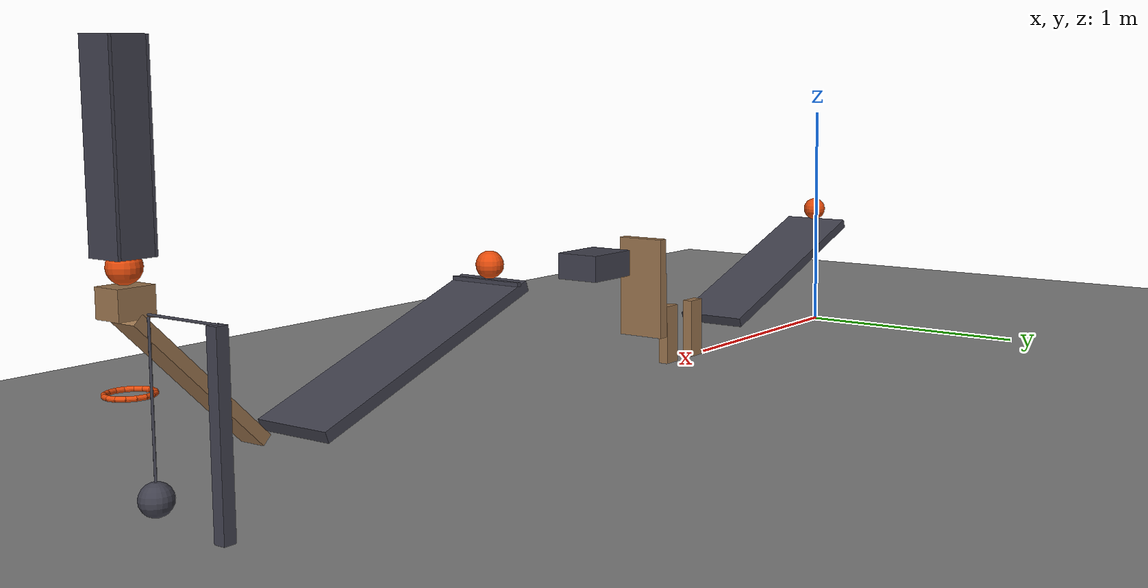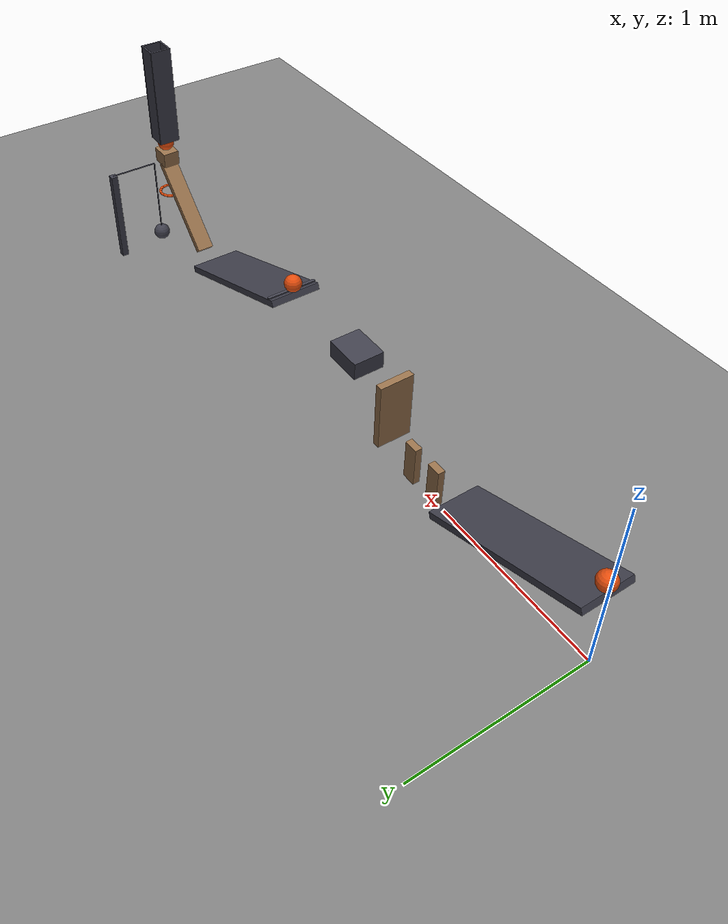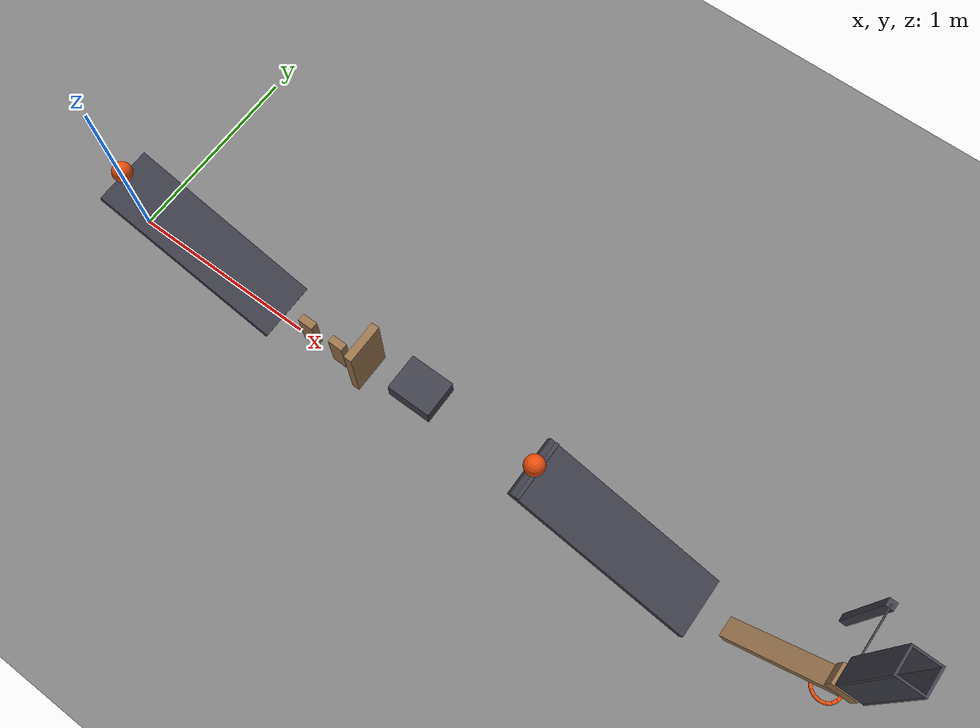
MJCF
<mujoco model="two_ramps_and_a_guided_ball_launch">
  <compiler angle="radian"/>
  <option timestep="0.002"/>
  <worldbody>
    <geom name="floor" type="plane" size="10 10 0.1" friction="0.7 0 0.002"/>
    <body name="ramp1">
      <geom name="ramp1" type="box" pos="0.469846 0 0.302216" size="0.5 0.15 0.02" euler="0 0.349066 0" friction="0.7 0 0" solref="0.01 1" rgba="0.25 0.25 0.3 1"/>
    </body>
    <body name="ball1" pos="0.0239414 0 0.539005">
      <freejoint/>
      <geom name="ball1" type="sphere" pos="0 0 0" size="0.05" mass="0.2" condim="6" friction="0.7 0 0" solref="0.01 1" rgba="0.9 0.3 0.05 1"/>
    </body>
    <body name="domino1" pos="1.08653 0 0.12">
      <freejoint/>
      <geom name="domino1" type="box" pos="0 0 0" size="0.04 0.02 0.12" mass="0.25" friction="0.7 0 0" solref="0.01 1" rgba="0.6 0.45 0.3 1"/>
    </body>
    <body name="domino2" pos="1.26653 0 0.12">
      <freejoint/>
      <geom name="domino2" type="box" pos="0 0 0" size="0.04 0.02 0.12" mass="0.25" friction="0.7 0 0" solref="0.01 1" rgba="0.6 0.45 0.3 1"/>
    </body>
    <body name="flap1" pos="1.44653 0 0.14">
      <joint name="flap1_hinge" type="hinge" pos="0 0 0" axis="0 1 0" limited="true" range="0 1.13446" damping="0.04"/>
      <geom name="flap1" type="box" pos="0 0 0.2" size="0.02 0.1 0.2" mass="0.3" friction="0.7 0 0" solref="0.01 1" rgba="0.6 0.45 0.3 1"/>
    </body>
    <body name="cart1" pos="1.77153 0 1000.47">
      <joint name="cart1_guide_hinge" type="hinge" pos="0 0 0" axis="0 1 0" limited="true" range="-0.000610865 0" damping="200000"/>
      <geom name="cart1" type="box" pos="0 0 -1000" size="0.11 0.09 0.05" mass="0.5" friction="0.7 0 0" solref="0.01 1" rgba="0.25 0.25 0.3 1"/>
    </body>
    <body name="ramp2">
      <geom name="ramp2" type="box" pos="2.82372 0 0.302216" size="0.5 0.15 0.02" euler="0 0.349066 0" friction="0.7 0 0" solref="0.01 1" rgba="0.25 0.25 0.3 1"/>
    </body>
    <body name="ball2" pos="2.37782 0 0.539005">
      <freejoint/>
      <geom name="ball2" type="sphere" pos="0 0 0" size="0.05" mass="0.2" condim="6" friction="0.7 0 0" solref="0.01 1" rgba="0.9 0.3 0.05 1"/>
    </body>
    <body name="ball2 release lip">
      <geom name="ball2 release lip" type="box" pos="2.39677 0 0.483005" size="0.009 0.15 0.007" friction="0.7 0 0" solref="0.01 1" rgba="0.25 0.25 0.3 1"/>
    </body>
    <body name="lever1" pos="3.64669 0 0.352132">
      <joint name="lever1_hinge" type="hinge" pos="0 0 0" axis="0 1 0" limited="true" range="-0.785398 0" stiffness="0.5" springref="-0.785398" damping="0.04"/>
      <geom name="lever1" type="box" pos="5e-10 0 5e-10" size="0.3 0.05 0.02" euler="0 -0.785398 0" mass="0.499" friction="0.7 0 0" solref="0.01 1" rgba="0.6 0.45 0.3 1"/>
      <geom name="lever1 carrier" type="box" pos="0.212132 0 0.257132" size="0.06 0.05 0.045" mass="0.001" friction="0.7 0 0" solref="0.01 1" rgba="0.6 0.45 0.3 1"/>
    </body>
    <body name="ball3" pos="3.85882 0 0.704264">
      <freejoint/>
      <geom name="ball3" type="sphere" pos="0 0 0" size="0.05" mass="0.2" condim="6" friction="0.7 0 0" solref="0.01 1" rgba="0.9 0.3 0.05 1"/>
    </body>
    <body name="ball3 near guide">
      <geom name="ball3 near guide" type="box" pos="3.80082 0 1.03026" size="0.005 0.063 0.3" friction="0.7 0 0" solref="0.01 1" rgba="0.25 0.25 0.3 1"/>
    </body>
    <body name="ball3 far guide">
      <geom name="ball3 far guide" type="box" pos="3.91682 0 1.03026" size="0.005 0.063 0.3" friction="0.7 0 0" solref="0.01 1" rgba="0.25 0.25 0.3 1"/>
    </body>
    <body name="ball3 left guide">
      <geom name="ball3 left guide" type="box" pos="3.85882 0.058 1.03026" size="0.053 0.005 0.3" friction="0.7 0 0" solref="0.01 1" rgba="0.25 0.25 0.3 1"/>
    </body>
    <body name="ball3 right guide">
      <geom name="ball3 right guide" type="box" pos="3.85882 -0.058 1.03026" size="0.053 0.005 0.3" friction="0.7 0 0" solref="0.01 1" rgba="0.25 0.25 0.3 1"/>
    </body>
    <body name="ring1">
      <geom name="ring1_00" type="capsule" size="0.008" fromto="3.92682 0 0.354264 3.92164 0.0260225 0.354264" friction="0.7 0 0" solref="0.01 1" rgba="0.9 0.3 0.05 1"/>
      <geom name="ring1_01" type="capsule" size="0.008" fromto="3.92164 0.0260225 0.354264 3.9069 0.0480833 0.354264" friction="0.7 0 0" solref="0.01 1" rgba="0.9 0.3 0.05 1"/>
      <geom name="ring1_02" type="capsule" size="0.008" fromto="3.9069 0.0480833 0.354264 3.88484 0.0628238 0.354264" friction="0.7 0 0" solref="0.01 1" rgba="0.9 0.3 0.05 1"/>
      <geom name="ring1_03" type="capsule" size="0.008" fromto="3.88484 0.0628238 0.354264 3.85882 0.068 0.354264" friction="0.7 0 0" solref="0.01 1" rgba="0.9 0.3 0.05 1"/>
      <geom name="ring1_04" type="capsule" size="0.008" fromto="3.85882 0.068 0.354264 3.83279 0.0628238 0.354264" friction="0.7 0 0" solref="0.01 1" rgba="0.9 0.3 0.05 1"/>
      <geom name="ring1_05" type="capsule" size="0.008" fromto="3.83279 0.0628238 0.354264 3.81073 0.0480833 0.354264" friction="0.7 0 0" solref="0.01 1" rgba="0.9 0.3 0.05 1"/>
      <geom name="ring1_06" type="capsule" size="0.008" fromto="3.81073 0.0480833 0.354264 3.79599 0.0260225 0.354264" friction="0.7 0 0" solref="0.01 1" rgba="0.9 0.3 0.05 1"/>
      <geom name="ring1_07" type="capsule" size="0.008" fromto="3.79599 0.0260225 0.354264 3.79082 8.3276e-18 0.354264" friction="0.7 0 0" solref="0.01 1" rgba="0.9 0.3 0.05 1"/>
      <geom name="ring1_08" type="capsule" size="0.008" fromto="3.79082 8.3276e-18 0.354264 3.79599 -0.0260225 0.354264" friction="0.7 0 0" solref="0.01 1" rgba="0.9 0.3 0.05 1"/>
      <geom name="ring1_09" type="capsule" size="0.008" fromto="3.79599 -0.0260225 0.354264 3.81073 -0.0480833 0.354264" friction="0.7 0 0" solref="0.01 1" rgba="0.9 0.3 0.05 1"/>
      <geom name="ring1_10" type="capsule" size="0.008" fromto="3.81073 -0.0480833 0.354264 3.83279 -0.0628238 0.354264" friction="0.7 0 0" solref="0.01 1" rgba="0.9 0.3 0.05 1"/>
      <geom name="ring1_11" type="capsule" size="0.008" fromto="3.83279 -0.0628238 0.354264 3.85882 -0.068 0.354264" friction="0.7 0 0" solref="0.01 1" rgba="0.9 0.3 0.05 1"/>
      <geom name="ring1_12" type="capsule" size="0.008" fromto="3.85882 -0.068 0.354264 3.88484 -0.0628238 0.354264" friction="0.7 0 0" solref="0.01 1" rgba="0.9 0.3 0.05 1"/>
      <geom name="ring1_13" type="capsule" size="0.008" fromto="3.88484 -0.0628238 0.354264 3.9069 -0.0480833 0.354264" friction="0.7 0 0" solref="0.01 1" rgba="0.9 0.3 0.05 1"/>
      <geom name="ring1_14" type="capsule" size="0.008" fromto="3.9069 -0.0480833 0.354264 3.92164 -0.0260225 0.354264" friction="0.7 0 0" solref="0.01 1" rgba="0.9 0.3 0.05 1"/>
      <geom name="ring1_15" type="capsule" size="0.008" fromto="3.92164 -0.0260225 0.354264 3.92682 -1.66552e-17 0.354264" friction="0.7 0 0" solref="0.01 1" rgba="0.9 0.3 0.05 1"/>
    </body>
    <body name="pendulum1" pos="3.85882 0.095 0.573039">
      <joint name="pendulum1_hinge" type="hinge" pos="0 0 0" axis="1 0 0" limited="true" range="-1.0472 1.0472" damping="0.04"/>
      <geom name="pendulum1" type="sphere" pos="0 0 -0.5" size="0.05" mass="0.33" friction="0.7 0 0" solref="0.01 1" rgba="0.25 0.25 0.3 1"/>
      <geom name="pendulum1 rod" type="capsule" size="0.004" fromto="0 0 0 0 0 -0.5" mass="0.02" friction="0.7 0 0" solref="0.01 1" rgba="0.25 0.25 0.3 1"/>
    </body>
    <body name="pendulum1 stand">
      <geom name="pendulum1 stand" type="box" pos="3.85882 0.375 0.29152" size="0.02 0.02 0.29152" friction="0.7 0 0" solref="0.01 1" rgba="0.25 0.25 0.3 1"/>
    </body>
    <body name="pendulum1 support">
      <geom name="pendulum1 support" type="capsule" size="0.004" fromto="3.85882 0.095 0.583039 3.85882 0.375 0.583039" friction="0.7 0 0" solref="0.01 1" rgba="0.25 0.25 0.3 1"/>
    </body>
  </worldbody>
  <keyframe>
    <key name="start" qpos="0.0239414 0 0.539005 1 0 0 0 1.08653 0 0.12 1 0 0 0 1.26653 0 0.12 1 0 0 0 0 0 2.37782 0 0.539005 1 0 0 0 0 3.85882 0 0.704264 1 0 0 0 0" qvel="0 0 0 0 0 0 0 0 0 0 0 0 0 0 0 0 0 0 0 0 0 0 0 0 0 0 0 0 0 0 0 0 0 0"/>
  </keyframe>
</mujoco>
